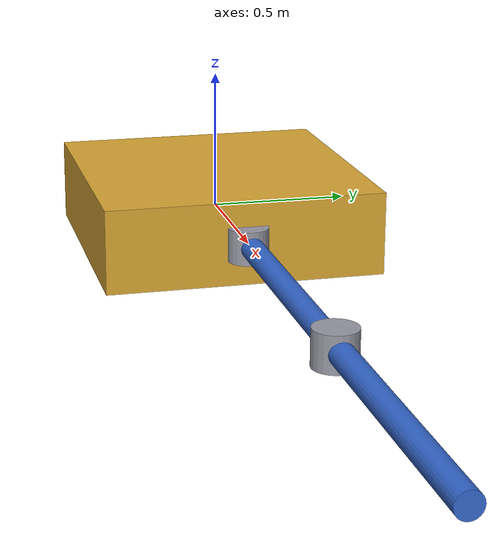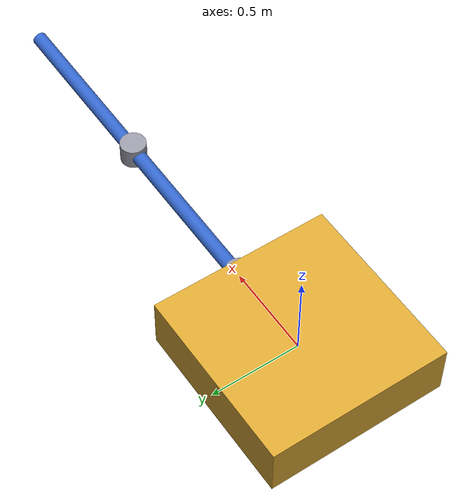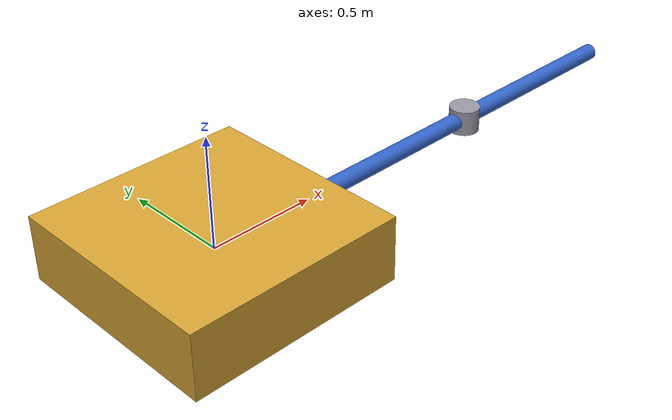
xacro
<?xml version="1.0"?>
<robot name="space_robot" xmlns:xacro="http://www.ros.org/wiki/xacro">
  <xacro:arg name="n_links" default="2"/>
  <xacro:arg name="cmd" default="effort"/>
  <xacro:arg name="q1" default="0.0"/>
  <xacro:arg name="q2" default="0.0"/>
  <xacro:arg name="q3" default="0.0"/>
  <xacro:arg name="grasp" default="false"/>
  <xacro:property name="n_links" value="$(arg n_links)"/>

  <!-- ===== Parameters (same as Project 1) ===== -->
  <xacro:property name="m0" value="100.0"/>   <!-- base mass [kg] -->
  <xacro:property name="a0" value="1.0"/>     <!-- base side [m] -->
  <xacro:property name="h0" value="0.3"/>     <!-- base thickness (out of plane, visual only matters) -->
  <xacro:property name="l1" value="1.0"/>
  <xacro:property name="l2" value="1.0"/>
  <xacro:property name="m1" value="10.0"/>
  <xacro:property name="m2" value="10.0"/>
  <xacro:property name="l3" value="0.5"/>     <!-- Project 1b wrist link -->
  <xacro:property name="m3" value="5.0"/>
  <xacro:property name="r_link" value="0.04"/> <!-- link radius (visual) -->

  <material name="gold"><color rgba="0.85 0.65 0.2 1"/></material>
  <material name="grey"><color rgba="0.6 0.6 0.65 1"/></material>
  <material name="blue"><color rgba="0.2 0.4 0.8 1"/></material>
  <material name="red"><color rgba="0.8 0.2 0.2 1"/></material>

  <!-- ===== Base (satellite) ===== -->
  <link name="base_link">
    <inertial>
      <origin xyz="0 0 0"/>
      <mass value="${m0}"/>
      <!-- solid box: Izz = m (a^2 + a^2)/12 = 16.667 kg m^2, same as P1's I0 -->
      <inertia ixx="${m0*(a0*a0 + h0*h0)/12}" iyy="${m0*(a0*a0 + h0*h0)/12}"
               izz="${m0*(a0*a0 + a0*a0)/12}" ixy="0" ixz="0" iyz="0"/>
    </inertial>
    <visual>
      <geometry><box size="${a0} ${a0} ${h0}"/></geometry>
      <material name="gold"/>
    </visual>
  </link>

  <!-- ===== Arm link macro: frame at the joint, link points along +x ===== -->
  <xacro:macro name="arm_link" params="name length mass color">
    <link name="${name}">
      <inertial>
        <origin xyz="${length/2} 0 0"/>
        <mass value="${mass}"/>
        <!-- slender rod about its centre (P1: I = m l^2 / 12); tiny value about its own axis -->
        <inertia ixx="${mass*r_link*r_link/2}" iyy="${mass*length*length/12}"
                 izz="${mass*length*length/12}" ixy="0" ixz="0" iyz="0"/>
      </inertial>
      <visual>
        <origin xyz="${length/2} 0 0" rpy="0 ${pi/2} 0"/>
        <geometry><cylinder radius="${r_link}" length="${length}"/></geometry>
        <material name="${color}"/>
      </visual>
      <visual>  <!-- joint marker -->
        <geometry><cylinder radius="${1.8*r_link}" length="${3*r_link}"/></geometry>
        <material name="grey"/>
      </visual>
    </link>
  </xacro:macro>

  <xacro:arm_link name="link1" length="${l1}" mass="${m1}" color="blue"/>
  <xacro:arm_link name="link2" length="${l2}" mass="${m2}" color="blue"/>
  <xacro:if value="${n_links == 3}">
    <xacro:arm_link name="link3" length="${l3}" mass="${m3}" color="red"/>
  </xacro:if>

  <!-- ===== Joints ===== -->
  <!-- shoulder: middle of the base's right face, b0 = (a0/2, 0) -->
  <joint name="joint1" type="continuous">
    <parent link="base_link"/>
    <child link="link1"/>
    <origin xyz="${a0/2} 0 0"/>
    <axis xyz="0 0 1"/>
    <limit effort="200" velocity="10"/>
    <dynamics damping="0" friction="0"/>
  </joint>

  <!-- elbow: at the tip of link 1 -->
  <joint name="joint2" type="continuous">
    <parent link="link1"/>
    <child link="link2"/>
    <origin xyz="${l1} 0 0"/>
    <axis xyz="0 0 1"/>
    <limit effort="200" velocity="10"/>
    <dynamics damping="0" friction="0"/>
  </joint>

  <xacro:if value="${n_links == 3}">
    <joint name="joint3" type="continuous">
      <parent link="link2"/>
      <child link="link3"/>
      <origin xyz="${l2} 0 0"/>
      <axis xyz="0 0 1"/>
      <limit effort="200" velocity="10"/>
      <dynamics damping="0" friction="0"/>
    </joint>
  </xacro:if>

  <!-- ===== ros2_control: joints commanded in torque (effort) or velocity ===== -->
  <ros2_control name="GazeboSimSystem" type="system">
    <hardware>
      <plugin>gz_ros2_control/GazeboSimSystem</plugin>
    </hardware>
    <xacro:macro name="ctrl_joint" params="name q0">
      <joint name="${name}">
        <command_interface name="$(arg cmd)"/>
        <state_interface name="position">
          <param name="initial_value">${q0}</param>
        </state_interface>
        <state_interface name="velocity"/>
        <state_interface name="effort"/>
      </joint>
    </xacro:macro>
    <xacro:ctrl_joint name="joint1" q0="$(arg q1)"/>
    <xacro:ctrl_joint name="joint2" q0="$(arg q2)"/>
    <xacro:if value="${n_links == 3}">
      <xacro:ctrl_joint name="joint3" q0="$(arg q3)"/>
    </xacro:if>
  </ros2_control>

  <gazebo>
    <!-- runs the ros2_control controller manager inside the Gazebo physics loop -->
    <plugin filename="gz_ros2_control-system" name="gz_ros2_control::GazeboSimROS2ControlPlugin">
      <parameters>$(find zero_g_manipulator)/config/controllers_${n_links}link.yaml</parameters>
    </plugin>
    <!-- publishes the base pose + velocity (the base is NOT actuated, we only watch it) -->
    <plugin filename="gz-sim-odometry-publisher-system" name="gz::sim::systems::OdometryPublisher">
      <odom_frame>world</odom_frame>
      <robot_base_frame>base_link</robot_base_frame>
      <dimensions>3</dimensions>
      <odom_publish_frequency>500</odom_publish_frequency>
    </plugin>
  </gazebo>

  <xacro:if value="$(arg grasp)">
    <gazebo>
      <plugin filename="gz-sim-detachable-joint-system" name="gz::sim::systems::DetachableJoint">
        <parent_link>link${n_links}</parent_link>
        <child_model>target</child_model>
        <child_link>target_link</child_link>
        <detach_topic>/space_robot/detach</detach_topic>
        <attach_topic>/space_robot/attach</attach_topic>
        <output_topic>/space_robot/attach_state</output_topic>
      </plugin>
    </gazebo>
  </xacro:if>
</robot>
